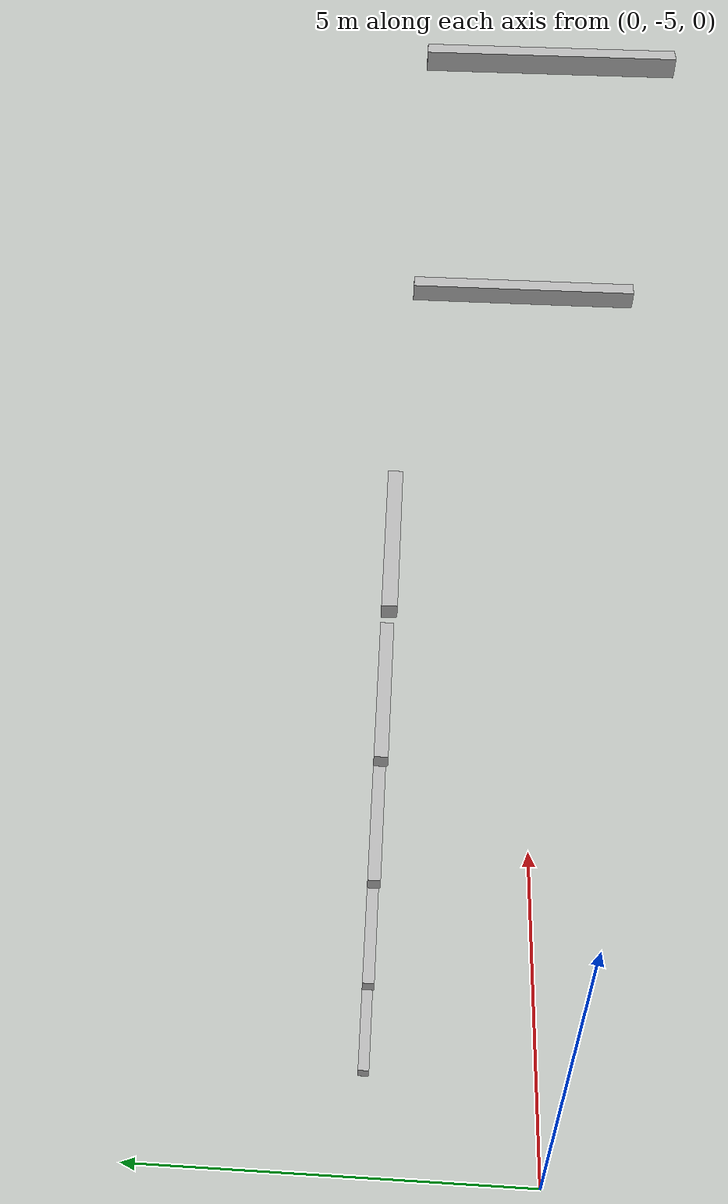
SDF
<sdf version="1.7">
 <world name="default">
  <model name="orthogonal_747_2.000.15_TS">
   <static>1</static>
   <link name="x_link_0_1_4">
    <inertial>
     <mass>1</mass>
     <inertia>
      <ixx>0.166667</ixx>
      <ixy>0</ixy>
      <ixz>0</ixz>
      <iyy>0.166667</iyy>
      <iyz>0</iyz>
      <izz>0.166667</izz>
     </inertia>
    </inertial>
    <pose>9.675 2.15 1.075 0 -0 0</pose>
    <visual name="visual_0">
     <laser_retro>246</laser_retro>
     <geometry><box><size>2 1e-06 0.15</size></box></geometry>
     <material>
      <script><name>Gazebo/Grey</name><uri>file://media/materials/scripts/gazebo.material</uri></script>
      <shader type="pixel"><normal_map>__default__</normal_map></shader>
      <ambient>0.678 0.498 0.659 1</ambient>
      <diffuse>0.7 0.7 0.7 1</diffuse>
      <specular>0.01 0.01 0.01 1</specular>
      <emissive>0 0 0 1</emissive>
     </material>
     <pose>0 -0.075 0 0 -0 0</pose>
     <transparency>1</transparency>
    </visual>
    <visual name="visual_1">
     <laser_retro>247</laser_retro>
     <geometry><box><size>2 1e-06 0.15</size></box></geometry>
     <material>
      <script><name>Gazebo/Grey</name><uri>file://media/materials/scripts/gazebo.material</uri></script>
      <shader type="pixel"><normal_map>__default__</normal_map></shader>
      <ambient>0.447 0.624 0.812 1</ambient>
      <diffuse>0.7 0.7 0.7 1</diffuse>
      <specular>0.01 0.01 0.01 1</specular>
      <emissive>0 0 0 1</emissive>
     </material>
     <pose>0 0.075 0 0 -0 0</pose>
     <transparency>1</transparency>
    </visual>
    <visual name="visual_2">
     <laser_retro>248</laser_retro>
     <geometry><box><size>2 0.15 1e-06</size></box></geometry>
     <material>
      <script><name>Gazebo/Grey</name><uri>file://media/materials/scripts/gazebo.material</uri></script>
      <shader type="pixel"><normal_map>__default__</normal_map></shader>
      <ambient>0.988 0.686 0.243 1</ambient>
      <diffuse>0.7 0.7 0.7 1</diffuse>
      <specular>0.01 0.01 0.01 1</specular>
      <emissive>0 0 0 1</emissive>
     </material>
     <pose>0 0 -0.075 0 -0 0</pose>
     <transparency>1</transparency>
    </visual>
    <visual name="visual_3">
     <laser_retro>249</laser_retro>
     <geometry><box><size>1e-06 0.15 0.15</size></box></geometry>
     <material>
      <script><name>Gazebo/Grey</name><uri>file://media/materials/scripts/gazebo.material</uri></script>
      <shader type="pixel"><normal_map>__default__</normal_map></shader>
      <ambient>0.988 0.914 0.31 1</ambient>
      <diffuse>0.7 0.7 0.7 1</diffuse>
      <specular>0.01 0.01 0.01 1</specular>
      <emissive>0 0 0 1</emissive>
     </material>
     <pose>1 0 0 0 -0 0</pose>
     <transparency>1</transparency>
    </visual>
    <visual name="visual_4">
     <laser_retro>250</laser_retro>
     <geometry><box><size>2 0.15 1e-06</size></box></geometry>
     <material>
      <script><name>Gazebo/Grey</name><uri>file://media/materials/scripts/gazebo.material</uri></script>
      <shader type="pixel"><normal_map>__default__</normal_map></shader>
      <ambient>0.937 0.161 0.161 1</ambient>
      <diffuse>0.7 0.7 0.7 1</diffuse>
      <specular>0.01 0.01 0.01 1</specular>
      <emissive>0 0 0 1</emissive>
     </material>
     <pose>0 0 0.075 0 -0 0</pose>
     <transparency>1</transparency>
    </visual>
    <visual name="visual_5">
     <laser_retro>251</laser_retro>
     <geometry><box><size>1e-06 0.15 0.15</size></box></geometry>
     <material>
      <script><name>Gazebo/Grey</name><uri>file://media/materials/scripts/gazebo.material</uri></script>
      <shader type="pixel"><normal_map>__default__</normal_map></shader>
      <ambient>0.541 0.886 0.204 1</ambient>
      <diffuse>0.7 0.7 0.7 1</diffuse>
      <specular>0.01 0.01 0.01 1</specular>
      <emissive>0 0 0 1</emissive>
     </material>
     <pose>-1 0 0 0 -0 0</pose>
     <transparency>1</transparency>
    </visual>
    <visual name="visual_texture">
     <geometry><box><size>1.9998 0.149985 0.149985</size></box></geometry>
     <material>
      <script>
       <uri>model://BASE_MODELS/simple_block_v2_textured/materials/scripts</uri>
       <uri>model://BASE_MODELS/simple_block_v2_textured/materials/textures</uri>
       <name>metal</name>
      </script>
     </material>
     <laser_retro>252</laser_retro>
    </visual>
    <collision name="collision">
     <geometry><box><size>2 0.15 0.15</size></box></geometry>
     <surface>
      <friction>
       <ode><mu>1</mu><mu2>1</mu2><fdir1>0 0 0</fdir1><slip1>0</slip1><slip2>0</slip2></ode>
       <torsional>
        <coefficient>1</coefficient>
        <patch_radius>0</patch_radius>
        <surface_radius>0</surface_radius>
        <use_patch_radius>1</use_patch_radius>
        <ode><slip>0</slip></ode>
       </torsional>
      </friction>
      <bounce><restitution_coefficient>0</restitution_coefficient><threshold>1e+06</threshold></bounce>
      <contact>
       <collide_without_contact>0</collide_without_contact>
       <collide_without_contact_bitmask>1</collide_without_contact_bitmask>
       <collide_bitmask>1</collide_bitmask>
       <ode>
        <soft_cfm>0</soft_cfm>
        <soft_erp>0.2</soft_erp>
        <kp>1e+13</kp>
        <kd>1</kd>
        <max_vel>0.01</max_vel>
        <min_depth>0</min_depth>
       </ode>
       <bullet>
        <split_impulse>1</split_impulse>
        <split_impulse_penetration_threshold>-0.01</split_impulse_penetration_threshold>
        <soft_cfm>0</soft_cfm>
        <soft_erp>0.2</soft_erp>
        <kp>1e+13</kp>
        <kd>1</kd>
       </bullet>
      </contact>
     </surface>
    </collision>
   </link>
   <link name="x_link_1_1_4">
    <inertial>
     <mass>1</mass>
     <inertia>
      <ixx>0.166667</ixx>
      <ixy>0</ixy>
      <ixz>0</ixz>
      <iyy>0.166667</iyy>
      <iyz>0</iyz>
      <izz>0.166667</izz>
     </inertia>
    </inertial>
    <pose>9.675 2.15 3.225 0 -0 0</pose>
    <visual name="visual_0">
     <laser_retro>1058</laser_retro>
     <geometry><box><size>2 1e-06 0.15</size></box></geometry>
     <material>
      <script><name>Gazebo/Grey</name><uri>file://media/materials/scripts/gazebo.material</uri></script>
      <shader type="pixel"><normal_map>__default__</normal_map></shader>
      <ambient>0.678 0.498 0.659 1</ambient>
      <diffuse>0.7 0.7 0.7 1</diffuse>
      <specular>0.01 0.01 0.01 1</specular>
      <emissive>0 0 0 1</emissive>
     </material>
     <pose>0 -0.075 0 0 -0 0</pose>
     <transparency>1</transparency>
    </visual>
    <visual name="visual_1">
     <laser_retro>1059</laser_retro>
     <geometry><box><size>2 1e-06 0.15</size></box></geometry>
     <material>
      <script><name>Gazebo/Grey</name><uri>file://media/materials/scripts/gazebo.material</uri></script>
      <shader type="pixel"><normal_map>__default__</normal_map></shader>
      <ambient>0.447 0.624 0.812 1</ambient>
      <diffuse>0.7 0.7 0.7 1</diffuse>
      <specular>0.01 0.01 0.01 1</specular>
      <emissive>0 0 0 1</emissive>
     </material>
     <pose>0 0.075 0 0 -0 0</pose>
     <transparency>1</transparency>
    </visual>
    <visual name="visual_2">
     <laser_retro>1060</laser_retro>
     <geometry><box><size>2 0.15 1e-06</size></box></geometry>
     <material>
      <script><name>Gazebo/Grey</name><uri>file://media/materials/scripts/gazebo.material</uri></script>
      <shader type="pixel"><normal_map>__default__</normal_map></shader>
      <ambient>0.988 0.686 0.243 1</ambient>
      <diffuse>0.7 0.7 0.7 1</diffuse>
      <specular>0.01 0.01 0.01 1</specular>
      <emissive>0 0 0 1</emissive>
     </material>
     <pose>0 0 -0.075 0 -0 0</pose>
     <transparency>1</transparency>
    </visual>
    <visual name="visual_3">
     <laser_retro>1061</laser_retro>
     <geometry><box><size>1e-06 0.15 0.15</size></box></geometry>
     <material>
      <script><name>Gazebo/Grey</name><uri>file://media/materials/scripts/gazebo.material</uri></script>
      <shader type="pixel"><normal_map>__default__</normal_map></shader>
      <ambient>0.988 0.914 0.31 1</ambient>
      <diffuse>0.7 0.7 0.7 1</diffuse>
      <specular>0.01 0.01 0.01 1</specular>
      <emissive>0 0 0 1</emissive>
     </material>
     <pose>1 0 0 0 -0 0</pose>
     <transparency>1</transparency>
    </visual>
    <visual name="visual_4">
     <laser_retro>1062</laser_retro>
     <geometry><box><size>2 0.15 1e-06</size></box></geometry>
     <material>
      <script><name>Gazebo/Grey</name><uri>file://media/materials/scripts/gazebo.material</uri></script>
      <shader type="pixel"><normal_map>__default__</normal_map></shader>
      <ambient>0.937 0.161 0.161 1</ambient>
      <diffuse>0.7 0.7 0.7 1</diffuse>
      <specular>0.01 0.01 0.01 1</specular>
      <emissive>0 0 0 1</emissive>
     </material>
     <pose>0 0 0.075 0 -0 0</pose>
     <transparency>1</transparency>
    </visual>
    <visual name="visual_5">
     <laser_retro>1063</laser_retro>
     <geometry><box><size>1e-06 0.15 0.15</size></box></geometry>
     <material>
      <script><name>Gazebo/Grey</name><uri>file://media/materials/scripts/gazebo.material</uri></script>
      <shader type="pixel"><normal_map>__default__</normal_map></shader>
      <ambient>0.541 0.886 0.204 1</ambient>
      <diffuse>0.7 0.7 0.7 1</diffuse>
      <specular>0.01 0.01 0.01 1</specular>
      <emissive>0 0 0 1</emissive>
     </material>
     <pose>-1 0 0 0 -0 0</pose>
     <transparency>1</transparency>
    </visual>
    <visual name="visual_texture">
     <geometry><box><size>1.9998 0.149985 0.149985</size></box></geometry>
     <material>
      <script>
       <uri>model://BASE_MODELS/simple_block_v2_textured/materials/scripts</uri>
       <uri>model://BASE_MODELS/simple_block_v2_textured/materials/textures</uri>
       <name>metal</name>
      </script>
     </material>
     <laser_retro>1064</laser_retro>
    </visual>
    <collision name="collision">
     <geometry><box><size>2 0.15 0.15</size></box></geometry>
     <surface>
      <friction>
       <ode><mu>1</mu><mu2>1</mu2><fdir1>0 0 0</fdir1><slip1>0</slip1><slip2>0</slip2></ode>
       <torsional>
        <coefficient>1</coefficient>
        <patch_radius>0</patch_radius>
        <surface_radius>0</surface_radius>
        <use_patch_radius>1</use_patch_radius>
        <ode><slip>0</slip></ode>
       </torsional>
      </friction>
      <bounce><restitution_coefficient>0</restitution_coefficient><threshold>1e+06</threshold></bounce>
      <contact>
       <collide_without_contact>0</collide_without_contact>
       <collide_without_contact_bitmask>1</collide_without_contact_bitmask>
       <collide_bitmask>1</collide_bitmask>
       <ode>
        <soft_cfm>0</soft_cfm>
        <soft_erp>0.2</soft_erp>
        <kp>1e+13</kp>
        <kd>1</kd>
        <max_vel>0.01</max_vel>
        <min_depth>0</min_depth>
       </ode>
       <bullet>
        <split_impulse>1</split_impulse>
        <split_impulse_penetration_threshold>-0.01</split_impulse_penetration_threshold>
        <soft_cfm>0</soft_cfm>
        <soft_erp>0.2</soft_erp>
        <kp>1e+13</kp>
        <kd>1</kd>
       </bullet>
      </contact>
     </surface>
    </collision>
   </link>
   <link name="x_link_2_1_4">
    <inertial>
     <mass>1</mass>
     <inertia>
      <ixx>0.166667</ixx>
      <ixy>0</ixy>
      <ixz>0</ixz>
      <iyy>0.166667</iyy>
      <iyz>0</iyz>
      <izz>0.166667</izz>
     </inertia>
    </inertial>
    <pose>9.675 2.15 5.375 0 -0 0</pose>
    <visual name="visual_0">
     <laser_retro>1961</laser_retro>
     <geometry><box><size>2 1e-06 0.15</size></box></geometry>
     <material>
      <script><name>Gazebo/Grey</name><uri>file://media/materials/scripts/gazebo.material</uri></script>
      <shader type="pixel"><normal_map>__default__</normal_map></shader>
      <ambient>0.678 0.498 0.659 1</ambient>
      <diffuse>0.7 0.7 0.7 1</diffuse>
      <specular>0.01 0.01 0.01 1</specular>
      <emissive>0 0 0 1</emissive>
     </material>
     <pose>0 -0.075 0 0 -0 0</pose>
     <transparency>1</transparency>
    </visual>
    <visual name="visual_1">
     <laser_retro>1962</laser_retro>
     <geometry><box><size>2 1e-06 0.15</size></box></geometry>
     <material>
      <script><name>Gazebo/Grey</name><uri>file://media/materials/scripts/gazebo.material</uri></script>
      <shader type="pixel"><normal_map>__default__</normal_map></shader>
      <ambient>0.447 0.624 0.812 1</ambient>
      <diffuse>0.7 0.7 0.7 1</diffuse>
      <specular>0.01 0.01 0.01 1</specular>
      <emissive>0 0 0 1</emissive>
     </material>
     <pose>0 0.075 0 0 -0 0</pose>
     <transparency>1</transparency>
    </visual>
    <visual name="visual_2">
     <laser_retro>1963</laser_retro>
     <geometry><box><size>2 0.15 1e-06</size></box></geometry>
     <material>
      <script><name>Gazebo/Grey</name><uri>file://media/materials/scripts/gazebo.material</uri></script>
      <shader type="pixel"><normal_map>__default__</normal_map></shader>
      <ambient>0.988 0.686 0.243 1</ambient>
      <diffuse>0.7 0.7 0.7 1</diffuse>
      <specular>0.01 0.01 0.01 1</specular>
      <emissive>0 0 0 1</emissive>
     </material>
     <pose>0 0 -0.075 0 -0 0</pose>
     <transparency>1</transparency>
    </visual>
    <visual name="visual_3">
     <laser_retro>1964</laser_retro>
     <geometry><box><size>1e-06 0.15 0.15</size></box></geometry>
     <material>
      <script><name>Gazebo/Grey</name><uri>file://media/materials/scripts/gazebo.material</uri></script>
      <shader type="pixel"><normal_map>__default__</normal_map></shader>
      <ambient>0.988 0.914 0.31 1</ambient>
      <diffuse>0.7 0.7 0.7 1</diffuse>
      <specular>0.01 0.01 0.01 1</specular>
      <emissive>0 0 0 1</emissive>
     </material>
     <pose>1 0 0 0 -0 0</pose>
     <transparency>1</transparency>
    </visual>
    <visual name="visual_4">
     <laser_retro>1965</laser_retro>
     <geometry><box><size>2 0.15 1e-06</size></box></geometry>
     <material>
      <script><name>Gazebo/Grey</name><uri>file://media/materials/scripts/gazebo.material</uri></script>
      <shader type="pixel"><normal_map>__default__</normal_map></shader>
      <ambient>0.937 0.161 0.161 1</ambient>
      <diffuse>0.7 0.7 0.7 1</diffuse>
      <specular>0.01 0.01 0.01 1</specular>
      <emissive>0 0 0 1</emissive>
     </material>
     <pose>0 0 0.075 0 -0 0</pose>
     <transparency>1</transparency>
    </visual>
    <visual name="visual_5">
     <laser_retro>1966</laser_retro>
     <geometry><box><size>1e-06 0.15 0.15</size></box></geometry>
     <material>
      <script><name>Gazebo/Grey</name><uri>file://media/materials/scripts/gazebo.material</uri></script>
      <shader type="pixel"><normal_map>__default__</normal_map></shader>
      <ambient>0.541 0.886 0.204 1</ambient>
      <diffuse>0.7 0.7 0.7 1</diffuse>
      <specular>0.01 0.01 0.01 1</specular>
      <emissive>0 0 0 1</emissive>
     </material>
     <pose>-1 0 0 0 -0 0</pose>
     <transparency>1</transparency>
    </visual>
    <visual name="visual_texture">
     <geometry><box><size>1.9998 0.149985 0.149985</size></box></geometry>
     <material>
      <script>
       <uri>model://BASE_MODELS/simple_block_v2_textured/materials/scripts</uri>
       <uri>model://BASE_MODELS/simple_block_v2_textured/materials/textures</uri>
       <name>metal</name>
      </script>
     </material>
     <laser_retro>1967</laser_retro>
    </visual>
    <collision name="collision">
     <geometry><box><size>2 0.15 0.15</size></box></geometry>
     <surface>
      <friction>
       <ode><mu>1</mu><mu2>1</mu2><fdir1>0 0 0</fdir1><slip1>0</slip1><slip2>0</slip2></ode>
       <torsional>
        <coefficient>1</coefficient>
        <patch_radius>0</patch_radius>
        <surface_radius>0</surface_radius>
        <use_patch_radius>1</use_patch_radius>
        <ode><slip>0</slip></ode>
       </torsional>
      </friction>
      <bounce><restitution_coefficient>0</restitution_coefficient><threshold>1e+06</threshold></bounce>
      <contact>
       <collide_without_contact>0</collide_without_contact>
       <collide_without_contact_bitmask>1</collide_without_contact_bitmask>
       <collide_bitmask>1</collide_bitmask>
       <ode>
        <soft_cfm>0</soft_cfm>
        <soft_erp>0.2</soft_erp>
        <kp>1e+13</kp>
        <kd>1</kd>
        <max_vel>0.01</max_vel>
        <min_depth>0</min_depth>
       </ode>
       <bullet>
        <split_impulse>1</split_impulse>
        <split_impulse_penetration_threshold>-0.01</split_impulse_penetration_threshold>
        <soft_cfm>0</soft_cfm>
        <soft_erp>0.2</soft_erp>
        <kp>1e+13</kp>
        <kd>1</kd>
       </bullet>
      </contact>
     </surface>
    </collision>
   </link>
   <link name="x_link_3_1_4">
    <inertial>
     <mass>1</mass>
     <inertia>
      <ixx>0.166667</ixx>
      <ixy>0</ixy>
      <ixz>0</ixz>
      <iyy>0.166667</iyy>
      <iyz>0</iyz>
      <izz>0.166667</izz>
     </inertia>
    </inertial>
    <pose>9.675 2.15 7.525 0 -0 0</pose>
    <visual name="visual_0">
     <laser_retro>2864</laser_retro>
     <geometry><box><size>2 1e-06 0.15</size></box></geometry>
     <material>
      <script><name>Gazebo/Grey</name><uri>file://media/materials/scripts/gazebo.material</uri></script>
      <shader type="pixel"><normal_map>__default__</normal_map></shader>
      <ambient>0.678 0.498 0.659 1</ambient>
      <diffuse>0.7 0.7 0.7 1</diffuse>
      <specular>0.01 0.01 0.01 1</specular>
      <emissive>0 0 0 1</emissive>
     </material>
     <pose>0 -0.075 0 0 -0 0</pose>
     <transparency>1</transparency>
    </visual>
    <visual name="visual_1">
     <laser_retro>2865</laser_retro>
     <geometry><box><size>2 1e-06 0.15</size></box></geometry>
     <material>
      <script><name>Gazebo/Grey</name><uri>file://media/materials/scripts/gazebo.material</uri></script>
      <shader type="pixel"><normal_map>__default__</normal_map></shader>
      <ambient>0.447 0.624 0.812 1</ambient>
      <diffuse>0.7 0.7 0.7 1</diffuse>
      <specular>0.01 0.01 0.01 1</specular>
      <emissive>0 0 0 1</emissive>
     </material>
     <pose>0 0.075 0 0 -0 0</pose>
     <transparency>1</transparency>
    </visual>
    <visual name="visual_2">
     <laser_retro>2866</laser_retro>
     <geometry><box><size>2 0.15 1e-06</size></box></geometry>
     <material>
      <script><name>Gazebo/Grey</name><uri>file://media/materials/scripts/gazebo.material</uri></script>
      <shader type="pixel"><normal_map>__default__</normal_map></shader>
      <ambient>0.988 0.686 0.243 1</ambient>
      <diffuse>0.7 0.7 0.7 1</diffuse>
      <specular>0.01 0.01 0.01 1</specular>
      <emissive>0 0 0 1</emissive>
     </material>
     <pose>0 0 -0.075 0 -0 0</pose>
     <transparency>1</transparency>
    </visual>
    <visual name="visual_3">
     <laser_retro>2867</laser_retro>
     <geometry><box><size>1e-06 0.15 0.15</size></box></geometry>
     <material>
      <script><name>Gazebo/Grey</name><uri>file://media/materials/scripts/gazebo.material</uri></script>
      <shader type="pixel"><normal_map>__default__</normal_map></shader>
      <ambient>0.988 0.914 0.31 1</ambient>
      <diffuse>0.7 0.7 0.7 1</diffuse>
      <specular>0.01 0.01 0.01 1</specular>
      <emissive>0 0 0 1</emissive>
     </material>
     <pose>1 0 0 0 -0 0</pose>
     <transparency>1</transparency>
    </visual>
    <visual name="visual_4">
     <laser_retro>2868</laser_retro>
     <geometry><box><size>2 0.15 1e-06</size></box></geometry>
     <material>
      <script><name>Gazebo/Grey</name><uri>file://media/materials/scripts/gazebo.material</uri></script>
      <shader type="pixel"><normal_map>__default__</normal_map></shader>
      <ambient>0.937 0.161 0.161 1</ambient>
      <diffuse>0.7 0.7 0.7 1</diffuse>
      <specular>0.01 0.01 0.01 1</specular>
      <emissive>0 0 0 1</emissive>
     </material>
     <pose>0 0 0.075 0 -0 0</pose>
     <transparency>1</transparency>
    </visual>
    <visual name="visual_5">
     <laser_retro>2869</laser_retro>
     <geometry><box><size>1e-06 0.15 0.15</size></box></geometry>
     <material>
      <script><name>Gazebo/Grey</name><uri>file://media/materials/scripts/gazebo.material</uri></script>
      <shader type="pixel"><normal_map>__default__</normal_map></shader>
      <ambient>0.541 0.886 0.204 1</ambient>
      <diffuse>0.7 0.7 0.7 1</diffuse>
      <specular>0.01 0.01 0.01 1</specular>
      <emissive>0 0 0 1</emissive>
     </material>
     <pose>-1 0 0 0 -0 0</pose>
     <transparency>1</transparency>
    </visual>
    <visual name="visual_texture">
     <geometry><box><size>1.9998 0.149985 0.149985</size></box></geometry>
     <material>
      <script>
       <uri>model://BASE_MODELS/simple_block_v2_textured/materials/scripts</uri>
       <uri>model://BASE_MODELS/simple_block_v2_textured/materials/textures</uri>
       <name>metal</name>
      </script>
     </material>
     <laser_retro>2870</laser_retro>
    </visual>
    <collision name="collision">
     <geometry><box><size>2 0.15 0.15</size></box></geometry>
     <surface>
      <friction>
       <ode><mu>1</mu><mu2>1</mu2><fdir1>0 0 0</fdir1><slip1>0</slip1><slip2>0</slip2></ode>
       <torsional>
        <coefficient>1</coefficient>
        <patch_radius>0</patch_radius>
        <surface_radius>0</surface_radius>
        <use_patch_radius>1</use_patch_radius>
        <ode><slip>0</slip></ode>
       </torsional>
      </friction>
      <bounce><restitution_coefficient>0</restitution_coefficient><threshold>1e+06</threshold></bounce>
      <contact>
       <collide_without_contact>0</collide_without_contact>
       <collide_without_contact_bitmask>1</collide_without_contact_bitmask>
       <collide_bitmask>1</collide_bitmask>
       <ode>
        <soft_cfm>0</soft_cfm>
        <soft_erp>0.2</soft_erp>
        <kp>1e+13</kp>
        <kd>1</kd>
        <max_vel>0.01</max_vel>
        <min_depth>0</min_depth>
       </ode>
       <bullet>
        <split_impulse>1</split_impulse>
        <split_impulse_penetration_threshold>-0.01</split_impulse_penetration_threshold>
        <soft_cfm>0</soft_cfm>
        <soft_erp>0.2</soft_erp>
        <kp>1e+13</kp>
        <kd>1</kd>
       </bullet>
      </contact>
     </surface>
    </collision>
   </link>
   <link name="x_link_4_1_4">
    <inertial>
     <mass>1</mass>
     <inertia>
      <ixx>0.166667</ixx>
      <ixy>0</ixy>
      <ixz>0</ixz>
      <iyy>0.166667</iyy>
      <iyz>0</iyz>
      <izz>0.166667</izz>
     </inertia>
    </inertial>
    <pose>9.675 2.15 9.675 0 -0 0</pose>
    <visual name="visual_0">
     <laser_retro>3767</laser_retro>
     <geometry><box><size>2 1e-06 0.15</size></box></geometry>
     <material>
      <script><name>Gazebo/Grey</name><uri>file://media/materials/scripts/gazebo.material</uri></script>
      <shader type="pixel"><normal_map>__default__</normal_map></shader>
      <ambient>0.678 0.498 0.659 1</ambient>
      <diffuse>0.7 0.7 0.7 1</diffuse>
      <specular>0.01 0.01 0.01 1</specular>
      <emissive>0 0 0 1</emissive>
     </material>
     <pose>0 -0.075 0 0 -0 0</pose>
     <transparency>1</transparency>
    </visual>
    <visual name="visual_1">
     <laser_retro>3768</laser_retro>
     <geometry><box><size>2 1e-06 0.15</size></box></geometry>
     <material>
      <script><name>Gazebo/Grey</name><uri>file://media/materials/scripts/gazebo.material</uri></script>
      <shader type="pixel"><normal_map>__default__</normal_map></shader>
      <ambient>0.447 0.624 0.812 1</ambient>
      <diffuse>0.7 0.7 0.7 1</diffuse>
      <specular>0.01 0.01 0.01 1</specular>
      <emissive>0 0 0 1</emissive>
     </material>
     <pose>0 0.075 0 0 -0 0</pose>
     <transparency>1</transparency>
    </visual>
    <visual name="visual_2">
     <laser_retro>3769</laser_retro>
     <geometry><box><size>2 0.15 1e-06</size></box></geometry>
     <material>
      <script><name>Gazebo/Grey</name><uri>file://media/materials/scripts/gazebo.material</uri></script>
      <shader type="pixel"><normal_map>__default__</normal_map></shader>
      <ambient>0.988 0.686 0.243 1</ambient>
      <diffuse>0.7 0.7 0.7 1</diffuse>
      <specular>0.01 0.01 0.01 1</specular>
      <emissive>0 0 0 1</emissive>
     </material>
     <pose>0 0 -0.075 0 -0 0</pose>
     <transparency>1</transparency>
    </visual>
    <visual name="visual_3">
     <laser_retro>3770</laser_retro>
     <geometry><box><size>1e-06 0.15 0.15</size></box></geometry>
     <material>
      <script><name>Gazebo/Grey</name><uri>file://media/materials/scripts/gazebo.material</uri></script>
      <shader type="pixel"><normal_map>__default__</normal_map></shader>
      <ambient>0.988 0.914 0.31 1</ambient>
      <diffuse>0.7 0.7 0.7 1</diffuse>
      <specular>0.01 0.01 0.01 1</specular>
      <emissive>0 0 0 1</emissive>
     </material>
     <pose>1 0 0 0 -0 0</pose>
     <transparency>1</transparency>
    </visual>
    <visual name="visual_4">
     <laser_retro>3771</laser_retro>
     <geometry><box><size>2 0.15 1e-06</size></box></geometry>
     <material>
      <script><name>Gazebo/Grey</name><uri>file://media/materials/scripts/gazebo.material</uri></script>
      <shader type="pixel"><normal_map>__default__</normal_map></shader>
      <ambient>0.937 0.161 0.161 1</ambient>
      <diffuse>0.7 0.7 0.7 1</diffuse>
      <specular>0.01 0.01 0.01 1</specular>
      <emissive>0 0 0 1</emissive>
     </material>
     <pose>0 0 0.075 0 -0 0</pose>
     <transparency>1</transparency>
    </visual>
    <visual name="visual_5">
     <laser_retro>3772</laser_retro>
     <geometry><box><size>1e-06 0.15 0.15</size></box></geometry>
     <material>
      <script><name>Gazebo/Grey</name><uri>file://media/materials/scripts/gazebo.material</uri></script>
      <shader type="pixel"><normal_map>__default__</normal_map></shader>
      <ambient>0.541 0.886 0.204 1</ambient>
      <diffuse>0.7 0.7 0.7 1</diffuse>
      <specular>0.01 0.01 0.01 1</specular>
      <emissive>0 0 0 1</emissive>
     </material>
     <pose>-1 0 0 0 -0 0</pose>
     <transparency>1</transparency>
    </visual>
    <visual name="visual_texture">
     <geometry><box><size>1.9998 0.149985 0.149985</size></box></geometry>
     <material>
      <script>
       <uri>model://BASE_MODELS/simple_block_v2_textured/materials/scripts</uri>
       <uri>model://BASE_MODELS/simple_block_v2_textured/materials/textures</uri>
       <name>metal</name>
      </script>
     </material>
     <laser_retro>3773</laser_retro>
    </visual>
    <collision name="collision">
     <geometry><box><size>2 0.15 0.15</size></box></geometry>
     <surface>
      <friction>
       <ode><mu>1</mu><mu2>1</mu2><fdir1>0 0 0</fdir1><slip1>0</slip1><slip2>0</slip2></ode>
       <torsional>
        <coefficient>1</coefficient>
        <patch_radius>0</patch_radius>
        <surface_radius>0</surface_radius>
        <use_patch_radius>1</use_patch_radius>
        <ode><slip>0</slip></ode>
       </torsional>
      </friction>
      <bounce><restitution_coefficient>0</restitution_coefficient><threshold>1e+06</threshold></bounce>
      <contact>
       <collide_without_contact>0</collide_without_contact>
       <collide_without_contact_bitmask>1</collide_without_contact_bitmask>
       <collide_bitmask>1</collide_bitmask>
       <ode>
        <soft_cfm>0</soft_cfm>
        <soft_erp>0.2</soft_erp>
        <kp>1e+13</kp>
        <kd>1</kd>
        <max_vel>0.01</max_vel>
        <min_depth>0</min_depth>
       </ode>
       <bullet>
        <split_impulse>1</split_impulse>
        <split_impulse_penetration_threshold>-0.01</split_impulse_penetration_threshold>
        <soft_cfm>0</soft_cfm>
        <soft_erp>0.2</soft_erp>
        <kp>1e+13</kp>
        <kd>1</kd>
       </bullet>
      </contact>
     </surface>
    </collision>
   </link>
   <link name="y_link_5_0_5">
    <inertial>
     <mass>1</mass>
     <inertia>
      <ixx>0.166667</ixx>
      <ixy>0</ixy>
      <ixz>0</ixz>
      <iyy>0.166667</iyy>
      <iyz>0</iyz>
      <izz>0.166667</izz>
     </inertia>
    </inertial>
    <pose>10.75 1.075 11.825 0 -0 0</pose>
    <visual name="visual_0">
     <laser_retro>4509</laser_retro>
     <geometry><box><size>0.15 1e-06 0.15</size></box></geometry>
     <material>
      <script><name>Gazebo/Grey</name><uri>file://media/materials/scripts/gazebo.material</uri></script>
      <shader type="pixel"><normal_map>__default__</normal_map></shader>
      <ambient>0.678 0.498 0.659 1</ambient>
      <diffuse>0.7 0.7 0.7 1</diffuse>
      <specular>0.01 0.01 0.01 1</specular>
      <emissive>0 0 0 1</emissive>
     </material>
     <pose>0 -1 0 0 -0 0</pose>
     <transparency>1</transparency>
    </visual>
    <visual name="visual_1">
     <laser_retro>4510</laser_retro>
     <geometry><box><size>0.15 1e-06 0.15</size></box></geometry>
     <material>
      <script><name>Gazebo/Grey</name><uri>file://media/materials/scripts/gazebo.material</uri></script>
      <shader type="pixel"><normal_map>__default__</normal_map></shader>
      <ambient>0.447 0.624 0.812 1</ambient>
      <diffuse>0.7 0.7 0.7 1</diffuse>
      <specular>0.01 0.01 0.01 1</specular>
      <emissive>0 0 0 1</emissive>
     </material>
     <pose>0 1 0 0 -0 0</pose>
     <transparency>1</transparency>
    </visual>
    <visual name="visual_2">
     <laser_retro>4511</laser_retro>
     <geometry><box><size>0.15 2 1e-06</size></box></geometry>
     <material>
      <script><name>Gazebo/Grey</name><uri>file://media/materials/scripts/gazebo.material</uri></script>
      <shader type="pixel"><normal_map>__default__</normal_map></shader>
      <ambient>0.988 0.686 0.243 1</ambient>
      <diffuse>0.7 0.7 0.7 1</diffuse>
      <specular>0.01 0.01 0.01 1</specular>
      <emissive>0 0 0 1</emissive>
     </material>
     <pose>0 0 -0.075 0 -0 0</pose>
     <transparency>1</transparency>
    </visual>
    <visual name="visual_3">
     <laser_retro>4512</laser_retro>
     <geometry><box><size>1e-06 2 0.15</size></box></geometry>
     <material>
      <script><name>Gazebo/Grey</name><uri>file://media/materials/scripts/gazebo.material</uri></script>
      <shader type="pixel"><normal_map>__default__</normal_map></shader>
      <ambient>0.988 0.914 0.31 1</ambient>
      <diffuse>0.7 0.7 0.7 1</diffuse>
      <specular>0.01 0.01 0.01 1</specular>
      <emissive>0 0 0 1</emissive>
     </material>
     <pose>0.075 0 0 0 -0 0</pose>
     <transparency>1</transparency>
    </visual>
    <visual name="visual_4">
     <laser_retro>4513</laser_retro>
     <geometry><box><size>0.15 2 1e-06</size></box></geometry>
     <material>
      <script><name>Gazebo/Grey</name><uri>file://media/materials/scripts/gazebo.material</uri></script>
      <shader type="pixel"><normal_map>__default__</normal_map></shader>
      <ambient>0.937 0.161 0.161 1</ambient>
      <diffuse>0.7 0.7 0.7 1</diffuse>
      <specular>0.01 0.01 0.01 1</specular>
      <emissive>0 0 0 1</emissive>
     </material>
     <pose>0 0 0.075 0 -0 0</pose>
     <transparency>1</transparency>
    </visual>
    <visual name="visual_5">
     <laser_retro>4514</laser_retro>
     <geometry><box><size>1e-06 2 0.15</size></box></geometry>
     <material>
      <script><name>Gazebo/Grey</name><uri>file://media/materials/scripts/gazebo.material</uri></script>
      <shader type="pixel"><normal_map>__default__</normal_map></shader>
      <ambient>0.541 0.886 0.204 1</ambient>
      <diffuse>0.7 0.7 0.7 1</diffuse>
      <specular>0.01 0.01 0.01 1</specular>
      <emissive>0 0 0 1</emissive>
     </material>
     <pose>-0.075 0 0 0 -0 0</pose>
     <transparency>1</transparency>
    </visual>
    <visual name="visual_texture">
     <geometry><box><size>0.149985 1.9998 0.149985</size></box></geometry>
     <material>
      <script>
       <uri>model://BASE_MODELS/simple_block_v2_textured/materials/scripts</uri>
       <uri>model://BASE_MODELS/simple_block_v2_textured/materials/textures</uri>
       <name>metal</name>
      </script>
     </material>
     <laser_retro>4515</laser_retro>
    </visual>
    <collision name="collision">
     <geometry><box><size>0.15 2 0.15</size></box></geometry>
     <surface>
      <friction>
       <ode><mu>1</mu><mu2>1</mu2><fdir1>0 0 0</fdir1><slip1>0</slip1><slip2>0</slip2></ode>
       <torsional>
        <coefficient>1</coefficient>
        <patch_radius>0</patch_radius>
        <surface_radius>0</surface_radius>
        <use_patch_radius>1</use_patch_radius>
        <ode><slip>0</slip></ode>
       </torsional>
      </friction>
      <bounce><restitution_coefficient>0</restitution_coefficient><threshold>1e+06</threshold></bounce>
      <contact>
       <collide_without_contact>0</collide_without_contact>
       <collide_without_contact_bitmask>1</collide_without_contact_bitmask>
       <collide_bitmask>1</collide_bitmask>
       <ode>
        <soft_cfm>0</soft_cfm>
        <soft_erp>0.2</soft_erp>
        <kp>1e+13</kp>
        <kd>1</kd>
        <max_vel>0.01</max_vel>
        <min_depth>0</min_depth>
       </ode>
       <bullet>
        <split_impulse>1</split_impulse>
        <split_impulse_penetration_threshold>-0.01</split_impulse_penetration_threshold>
        <soft_cfm>0</soft_cfm>
        <soft_erp>0.2</soft_erp>
        <kp>1e+13</kp>
        <kd>1</kd>
       </bullet>
      </contact>
     </surface>
    </collision>
   </link>
   <link name="y_link_6_0_5">
    <inertial>
     <mass>1</mass>
     <inertia>
      <ixx>0.166667</ixx>
      <ixy>0</ixy>
      <ixz>0</ixz>
      <iyy>0.166667</iyy>
      <iyz>0</iyz>
      <izz>0.166667</izz>
     </inertia>
    </inertial>
    <pose>10.75 1.075 13.975 0 -0 0</pose>
    <visual name="visual_0">
     <laser_retro>5412</laser_retro>
     <geometry><box><size>0.15 1e-06 0.15</size></box></geometry>
     <material>
      <script><name>Gazebo/Grey</name><uri>file://media/materials/scripts/gazebo.material</uri></script>
      <shader type="pixel"><normal_map>__default__</normal_map></shader>
      <ambient>0.678 0.498 0.659 1</ambient>
      <diffuse>0.7 0.7 0.7 1</diffuse>
      <specular>0.01 0.01 0.01 1</specular>
      <emissive>0 0 0 1</emissive>
     </material>
     <pose>0 -1 0 0 -0 0</pose>
     <transparency>1</transparency>
    </visual>
    <visual name="visual_1">
     <laser_retro>5413</laser_retro>
     <geometry><box><size>0.15 1e-06 0.15</size></box></geometry>
     <material>
      <script><name>Gazebo/Grey</name><uri>file://media/materials/scripts/gazebo.material</uri></script>
      <shader type="pixel"><normal_map>__default__</normal_map></shader>
      <ambient>0.447 0.624 0.812 1</ambient>
      <diffuse>0.7 0.7 0.7 1</diffuse>
      <specular>0.01 0.01 0.01 1</specular>
      <emissive>0 0 0 1</emissive>
     </material>
     <pose>0 1 0 0 -0 0</pose>
     <transparency>1</transparency>
    </visual>
    <visual name="visual_2">
     <laser_retro>5414</laser_retro>
     <geometry><box><size>0.15 2 1e-06</size></box></geometry>
     <material>
      <script><name>Gazebo/Grey</name><uri>file://media/materials/scripts/gazebo.material</uri></script>
      <shader type="pixel"><normal_map>__default__</normal_map></shader>
      <ambient>0.988 0.686 0.243 1</ambient>
      <diffuse>0.7 0.7 0.7 1</diffuse>
      <specular>0.01 0.01 0.01 1</specular>
      <emissive>0 0 0 1</emissive>
     </material>
     <pose>0 0 -0.075 0 -0 0</pose>
     <transparency>1</transparency>
    </visual>
    <visual name="visual_3">
     <laser_retro>5415</laser_retro>
     <geometry><box><size>1e-06 2 0.15</size></box></geometry>
     <material>
      <script><name>Gazebo/Grey</name><uri>file://media/materials/scripts/gazebo.material</uri></script>
      <shader type="pixel"><normal_map>__default__</normal_map></shader>
      <ambient>0.988 0.914 0.31 1</ambient>
      <diffuse>0.7 0.7 0.7 1</diffuse>
      <specular>0.01 0.01 0.01 1</specular>
      <emissive>0 0 0 1</emissive>
     </material>
     <pose>0.075 0 0 0 -0 0</pose>
     <transparency>1</transparency>
    </visual>
    <visual name="visual_4">
     <laser_retro>5416</laser_retro>
     <geometry><box><size>0.15 2 1e-06</size></box></geometry>
     <material>
      <script><name>Gazebo/Grey</name><uri>file://media/materials/scripts/gazebo.material</uri></script>
      <shader type="pixel"><normal_map>__default__</normal_map></shader>
      <ambient>0.937 0.161 0.161 1</ambient>
      <diffuse>0.7 0.7 0.7 1</diffuse>
      <specular>0.01 0.01 0.01 1</specular>
      <emissive>0 0 0 1</emissive>
     </material>
     <pose>0 0 0.075 0 -0 0</pose>
     <transparency>1</transparency>
    </visual>
    <visual name="visual_5">
     <laser_retro>5417</laser_retro>
     <geometry><box><size>1e-06 2 0.15</size></box></geometry>
     <material>
      <script><name>Gazebo/Grey</name><uri>file://media/materials/scripts/gazebo.material</uri></script>
      <shader type="pixel"><normal_map>__default__</normal_map></shader>
      <ambient>0.541 0.886 0.204 1</ambient>
      <diffuse>0.7 0.7 0.7 1</diffuse>
      <specular>0.01 0.01 0.01 1</specular>
      <emissive>0 0 0 1</emissive>
     </material>
     <pose>-0.075 0 0 0 -0 0</pose>
     <transparency>1</transparency>
    </visual>
    <visual name="visual_texture">
     <geometry><box><size>0.149985 1.9998 0.149985</size></box></geometry>
     <material>
      <script>
       <uri>model://BASE_MODELS/simple_block_v2_textured/materials/scripts</uri>
       <uri>model://BASE_MODELS/simple_block_v2_textured/materials/textures</uri>
       <name>metal</name>
      </script>
     </material>
     <laser_retro>5418</laser_retro>
    </visual>
    <collision name="collision">
     <geometry><box><size>0.15 2 0.15</size></box></geometry>
     <surface>
      <friction>
       <ode><mu>1</mu><mu2>1</mu2><fdir1>0 0 0</fdir1><slip1>0</slip1><slip2>0</slip2></ode>
       <torsional>
        <coefficient>1</coefficient>
        <patch_radius>0</patch_radius>
        <surface_radius>0</surface_radius>
        <use_patch_radius>1</use_patch_radius>
        <ode><slip>0</slip></ode>
       </torsional>
      </friction>
      <bounce><restitution_coefficient>0</restitution_coefficient><threshold>1e+06</threshold></bounce>
      <contact>
       <collide_without_contact>0</collide_without_contact>
       <collide_without_contact_bitmask>1</collide_without_contact_bitmask>
       <collide_bitmask>1</collide_bitmask>
       <ode>
        <soft_cfm>0</soft_cfm>
        <soft_erp>0.2</soft_erp>
        <kp>1e+13</kp>
        <kd>1</kd>
        <max_vel>0.01</max_vel>
        <min_depth>0</min_depth>
       </ode>
       <bullet>
        <split_impulse>1</split_impulse>
        <split_impulse_penetration_threshold>-0.01</split_impulse_penetration_threshold>
        <soft_cfm>0</soft_cfm>
        <soft_erp>0.2</soft_erp>
        <kp>1e+13</kp>
        <kd>1</kd>
       </bullet>
      </contact>
     </surface>
    </collision>
   </link>
   <pose>-6.47624 -5 -2.5 0 -0 0</pose>
  </model>
 </world>
</sdf>
